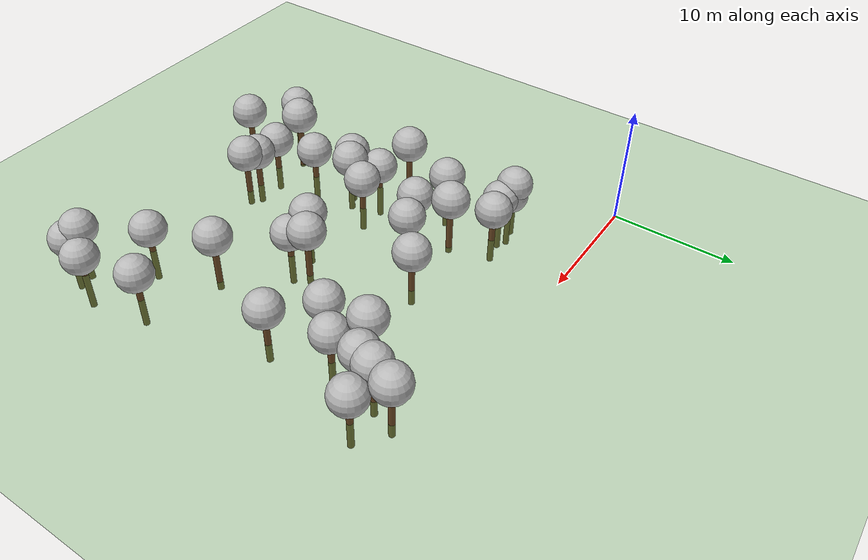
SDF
<sdf version="1.5">
 <world name="default">
  <model name="tree_simple496">
   <static>1</static>
   <link name="link">
    <pose>0 0 0.1 0 -0 0</pose>
    <collision name="collision_trunk">
     <pose>0 0 2 0 -0 0</pose>
     <geometry><cylinder><radius>0.25</radius><length>4</length></cylinder></geometry>
    </collision>
    <collision name="collision_treetop">
     <pose>0 0 5.2 0 -0 0</pose>
     <geometry><sphere><radius>1.5</radius></sphere></geometry>
    </collision>
    <visual name="trunk">
     <pose>0 0 2 0 -0 0</pose>
     <geometry><cylinder><radius>0.25</radius><length>4</length></cylinder></geometry>
     <material>
      <script>
       <uri>model://tree_simple/scripts</uri>
       <uri>model://tree_simple/materials/textures</uri>
       <name>TreeSimple/Trunk</name>
      </script>
     </material>
    </visual>
    <visual name="treetop">
     <pose>0 0 5.2 0 -0 0</pose>
     <geometry><sphere><radius>1.5</radius></sphere></geometry>
     <material>
      <script>
       <uri>model://tree_simple/scripts</uri>
       <uri>model://tree_simple/materials/textures</uri>
       <name>TreeSimple/Treetop</name>
      </script>
     </material>
    </visual>
   </link>
   <pose>13.6194298432 -26.9856291803 -1.9347447163207072 0 -0 0</pose>
  </model>
  <model name="tree_simple478">
   <static>1</static>
   <link name="link">
    <pose>0 0 0.1 0 -0 0</pose>
    <collision name="collision_trunk">
     <pose>0 0 2 0 -0 0</pose>
     <geometry><cylinder><radius>0.25</radius><length>4</length></cylinder></geometry>
    </collision>
    <collision name="collision_treetop">
     <pose>0 0 5.2 0 -0 0</pose>
     <geometry><sphere><radius>1.5</radius></sphere></geometry>
    </collision>
    <visual name="trunk">
     <pose>0 0 2 0 -0 0</pose>
     <geometry><cylinder><radius>0.25</radius><length>4</length></cylinder></geometry>
     <material>
      <script>
       <uri>model://tree_simple/scripts</uri>
       <uri>model://tree_simple/materials/textures</uri>
       <name>TreeSimple/Trunk</name>
      </script>
     </material>
    </visual>
    <visual name="treetop">
     <pose>0 0 5.2 0 -0 0</pose>
     <geometry><sphere><radius>1.5</radius></sphere></geometry>
     <material>
      <script>
       <uri>model://tree_simple/scripts</uri>
       <uri>model://tree_simple/materials/textures</uri>
       <name>TreeSimple/Treetop</name>
      </script>
     </material>
    </visual>
   </link>
   <pose>6.74093075138 -12.3162984353 -2.3090144796189875 0 -0 0</pose>
  </model>
  <model name="tree_simple472">
   <static>1</static>
   <link name="link">
    <pose>0 0 0.1 0 -0 0</pose>
    <collision name="collision_trunk">
     <pose>0 0 2 0 -0 0</pose>
     <geometry><cylinder><radius>0.25</radius><length>4</length></cylinder></geometry>
    </collision>
    <collision name="collision_treetop">
     <pose>0 0 5.2 0 -0 0</pose>
     <geometry><sphere><radius>1.5</radius></sphere></geometry>
    </collision>
    <visual name="trunk">
     <pose>0 0 2 0 -0 0</pose>
     <geometry><cylinder><radius>0.25</radius><length>4</length></cylinder></geometry>
     <material>
      <script>
       <uri>model://tree_simple/scripts</uri>
       <uri>model://tree_simple/materials/textures</uri>
       <name>TreeSimple/Trunk</name>
      </script>
     </material>
    </visual>
    <visual name="treetop">
     <pose>0 0 5.2 0 -0 0</pose>
     <geometry><sphere><radius>1.5</radius></sphere></geometry>
     <material>
      <script>
       <uri>model://tree_simple/scripts</uri>
       <uri>model://tree_simple/materials/textures</uri>
       <name>TreeSimple/Treetop</name>
      </script>
     </material>
    </visual>
   </link>
   <pose>9.92228677952 -23.8303447852 -2.588696135577622 0 -0 0</pose>
  </model>
  <model name="tree_simple469">
   <static>1</static>
   <link name="link">
    <pose>0 0 0.1 0 -0 0</pose>
    <collision name="collision_trunk">
     <pose>0 0 2 0 -0 0</pose>
     <geometry><cylinder><radius>0.25</radius><length>4</length></cylinder></geometry>
    </collision>
    <collision name="collision_treetop">
     <pose>0 0 5.2 0 -0 0</pose>
     <geometry><sphere><radius>1.5</radius></sphere></geometry>
    </collision>
    <visual name="trunk">
     <pose>0 0 2 0 -0 0</pose>
     <geometry><cylinder><radius>0.25</radius><length>4</length></cylinder></geometry>
     <material>
      <script>
       <uri>model://tree_simple/scripts</uri>
       <uri>model://tree_simple/materials/textures</uri>
       <name>TreeSimple/Trunk</name>
      </script>
     </material>
    </visual>
    <visual name="treetop">
     <pose>0 0 5.2 0 -0 0</pose>
     <geometry><sphere><radius>1.5</radius></sphere></geometry>
     <material>
      <script>
       <uri>model://tree_simple/scripts</uri>
       <uri>model://tree_simple/materials/textures</uri>
       <name>TreeSimple/Treetop</name>
      </script>
     </material>
    </visual>
   </link>
   <pose>28.6908934165 -31.7515844244 -2.281617551286586 0 -0 0</pose>
  </model>
  <model name="tree_simple463">
   <static>1</static>
   <link name="link">
    <pose>0 0 0.1 0 -0 0</pose>
    <collision name="collision_trunk">
     <pose>0 0 2 0 -0 0</pose>
     <geometry><cylinder><radius>0.25</radius><length>4</length></cylinder></geometry>
    </collision>
    <collision name="collision_treetop">
     <pose>0 0 5.2 0 -0 0</pose>
     <geometry><sphere><radius>1.5</radius></sphere></geometry>
    </collision>
    <visual name="trunk">
     <pose>0 0 2 0 -0 0</pose>
     <geometry><cylinder><radius>0.25</radius><length>4</length></cylinder></geometry>
     <material>
      <script>
       <uri>model://tree_simple/scripts</uri>
       <uri>model://tree_simple/materials/textures</uri>
       <name>TreeSimple/Trunk</name>
      </script>
     </material>
    </visual>
    <visual name="treetop">
     <pose>0 0 5.2 0 -0 0</pose>
     <geometry><sphere><radius>1.5</radius></sphere></geometry>
     <material>
      <script>
       <uri>model://tree_simple/scripts</uri>
       <uri>model://tree_simple/materials/textures</uri>
       <name>TreeSimple/Treetop</name>
      </script>
     </material>
    </visual>
   </link>
   <pose>4.14452898467 -7.71733475474 -3.9298275554259687 0 -0 0</pose>
  </model>
  <model name="tree_simple451">
   <static>1</static>
   <link name="link">
    <pose>0 0 0.1 0 -0 0</pose>
    <collision name="collision_trunk">
     <pose>0 0 2 0 -0 0</pose>
     <geometry><cylinder><radius>0.25</radius><length>4</length></cylinder></geometry>
    </collision>
    <collision name="collision_treetop">
     <pose>0 0 5.2 0 -0 0</pose>
     <geometry><sphere><radius>1.5</radius></sphere></geometry>
    </collision>
    <visual name="trunk">
     <pose>0 0 2 0 -0 0</pose>
     <geometry><cylinder><radius>0.25</radius><length>4</length></cylinder></geometry>
     <material>
      <script>
       <uri>model://tree_simple/scripts</uri>
       <uri>model://tree_simple/materials/textures</uri>
       <name>TreeSimple/Trunk</name>
      </script>
     </material>
    </visual>
    <visual name="treetop">
     <pose>0 0 5.2 0 -0 0</pose>
     <geometry><sphere><radius>1.5</radius></sphere></geometry>
     <material>
      <script>
       <uri>model://tree_simple/scripts</uri>
       <uri>model://tree_simple/materials/textures</uri>
       <name>TreeSimple/Treetop</name>
      </script>
     </material>
    </visual>
   </link>
   <pose>25.0880879186 -28.1508348671 -3.116724228893323 0 -0 0</pose>
  </model>
  <model name="tree_simple439">
   <static>1</static>
   <link name="link">
    <pose>0 0 0.1 0 -0 0</pose>
    <collision name="collision_trunk">
     <pose>0 0 2 0 -0 0</pose>
     <geometry><cylinder><radius>0.25</radius><length>4</length></cylinder></geometry>
    </collision>
    <collision name="collision_treetop">
     <pose>0 0 5.2 0 -0 0</pose>
     <geometry><sphere><radius>1.5</radius></sphere></geometry>
    </collision>
    <visual name="trunk">
     <pose>0 0 2 0 -0 0</pose>
     <geometry><cylinder><radius>0.25</radius><length>4</length></cylinder></geometry>
     <material>
      <script>
       <uri>model://tree_simple/scripts</uri>
       <uri>model://tree_simple/materials/textures</uri>
       <name>TreeSimple/Trunk</name>
      </script>
     </material>
    </visual>
    <visual name="treetop">
     <pose>0 0 5.2 0 -0 0</pose>
     <geometry><sphere><radius>1.5</radius></sphere></geometry>
     <material>
      <script>
       <uri>model://tree_simple/scripts</uri>
       <uri>model://tree_simple/materials/textures</uri>
       <name>TreeSimple/Treetop</name>
      </script>
     </material>
    </visual>
   </link>
   <pose>8.56501316053 -20.7640585998 -2.2327764649918236 0 -0 0</pose>
  </model>
  <model name="tree_simple432">
   <static>1</static>
   <link name="link">
    <pose>0 0 0.1 0 -0 0</pose>
    <collision name="collision_trunk">
     <pose>0 0 2 0 -0 0</pose>
     <geometry><cylinder><radius>0.25</radius><length>4</length></cylinder></geometry>
    </collision>
    <collision name="collision_treetop">
     <pose>0 0 5.2 0 -0 0</pose>
     <geometry><sphere><radius>1.5</radius></sphere></geometry>
    </collision>
    <visual name="trunk">
     <pose>0 0 2 0 -0 0</pose>
     <geometry><cylinder><radius>0.25</radius><length>4</length></cylinder></geometry>
     <material>
      <script>
       <uri>model://tree_simple/scripts</uri>
       <uri>model://tree_simple/materials/textures</uri>
       <name>TreeSimple/Trunk</name>
      </script>
     </material>
    </visual>
    <visual name="treetop">
     <pose>0 0 5.2 0 -0 0</pose>
     <geometry><sphere><radius>1.5</radius></sphere></geometry>
     <material>
      <script>
       <uri>model://tree_simple/scripts</uri>
       <uri>model://tree_simple/materials/textures</uri>
       <name>TreeSimple/Treetop</name>
      </script>
     </material>
    </visual>
   </link>
   <pose>8.39657738542 -6.88848549894 -2.341916558692954 0 -0 0</pose>
  </model>
  <model name="tree_simple429">
   <static>1</static>
   <link name="link">
    <pose>0 0 0.1 0 -0 0</pose>
    <collision name="collision_trunk">
     <pose>0 0 2 0 -0 0</pose>
     <geometry><cylinder><radius>0.25</radius><length>4</length></cylinder></geometry>
    </collision>
    <collision name="collision_treetop">
     <pose>0 0 5.2 0 -0 0</pose>
     <geometry><sphere><radius>1.5</radius></sphere></geometry>
    </collision>
    <visual name="trunk">
     <pose>0 0 2 0 -0 0</pose>
     <geometry><cylinder><radius>0.25</radius><length>4</length></cylinder></geometry>
     <material>
      <script>
       <uri>model://tree_simple/scripts</uri>
       <uri>model://tree_simple/materials/textures</uri>
       <name>TreeSimple/Trunk</name>
      </script>
     </material>
    </visual>
    <visual name="treetop">
     <pose>0 0 5.2 0 -0 0</pose>
     <geometry><sphere><radius>1.5</radius></sphere></geometry>
     <material>
      <script>
       <uri>model://tree_simple/scripts</uri>
       <uri>model://tree_simple/materials/textures</uri>
       <name>TreeSimple/Treetop</name>
      </script>
     </material>
    </visual>
   </link>
   <pose>29.4727075469 -24.7358283571 -2.736658393789036 0 -0 0</pose>
  </model>
  <model name="tree_simple428">
   <static>1</static>
   <link name="link">
    <pose>0 0 0.1 0 -0 0</pose>
    <collision name="collision_trunk">
     <pose>0 0 2 0 -0 0</pose>
     <geometry><cylinder><radius>0.25</radius><length>4</length></cylinder></geometry>
    </collision>
    <collision name="collision_treetop">
     <pose>0 0 5.2 0 -0 0</pose>
     <geometry><sphere><radius>1.5</radius></sphere></geometry>
    </collision>
    <visual name="trunk">
     <pose>0 0 2 0 -0 0</pose>
     <geometry><cylinder><radius>0.25</radius><length>4</length></cylinder></geometry>
     <material>
      <script>
       <uri>model://tree_simple/scripts</uri>
       <uri>model://tree_simple/materials/textures</uri>
       <name>TreeSimple/Trunk</name>
      </script>
     </material>
    </visual>
    <visual name="treetop">
     <pose>0 0 5.2 0 -0 0</pose>
     <geometry><sphere><radius>1.5</radius></sphere></geometry>
     <material>
      <script>
       <uri>model://tree_simple/scripts</uri>
       <uri>model://tree_simple/materials/textures</uri>
       <name>TreeSimple/Treetop</name>
      </script>
     </material>
    </visual>
   </link>
   <pose>9.87663766252 -19.9509422297 -1.9351295127514692 0 -0 0</pose>
  </model>
  <model name="tree_simple394">
   <static>1</static>
   <link name="link">
    <pose>0 0 0.1 0 -0 0</pose>
    <collision name="collision_trunk">
     <pose>0 0 2 0 -0 0</pose>
     <geometry><cylinder><radius>0.25</radius><length>4</length></cylinder></geometry>
    </collision>
    <collision name="collision_treetop">
     <pose>0 0 5.2 0 -0 0</pose>
     <geometry><sphere><radius>1.5</radius></sphere></geometry>
    </collision>
    <visual name="trunk">
     <pose>0 0 2 0 -0 0</pose>
     <geometry><cylinder><radius>0.25</radius><length>4</length></cylinder></geometry>
     <material>
      <script>
       <uri>model://tree_simple/scripts</uri>
       <uri>model://tree_simple/materials/textures</uri>
       <name>TreeSimple/Trunk</name>
      </script>
     </material>
    </visual>
    <visual name="treetop">
     <pose>0 0 5.2 0 -0 0</pose>
     <geometry><sphere><radius>1.5</radius></sphere></geometry>
     <material>
      <script>
       <uri>model://tree_simple/scripts</uri>
       <uri>model://tree_simple/materials/textures</uri>
       <name>TreeSimple/Treetop</name>
      </script>
     </material>
    </visual>
   </link>
   <pose>26.6658652991 -6.19294115589 -1.7729371678817394 0 -0 0</pose>
  </model>
  <model name="tree_simple389">
   <static>1</static>
   <link name="link">
    <pose>0 0 0.1 0 -0 0</pose>
    <collision name="collision_trunk">
     <pose>0 0 2 0 -0 0</pose>
     <geometry><cylinder><radius>0.25</radius><length>4</length></cylinder></geometry>
    </collision>
    <collision name="collision_treetop">
     <pose>0 0 5.2 0 -0 0</pose>
     <geometry><sphere><radius>1.5</radius></sphere></geometry>
    </collision>
    <visual name="trunk">
     <pose>0 0 2 0 -0 0</pose>
     <geometry><cylinder><radius>0.25</radius><length>4</length></cylinder></geometry>
     <material>
      <script>
       <uri>model://tree_simple/scripts</uri>
       <uri>model://tree_simple/materials/textures</uri>
       <name>TreeSimple/Trunk</name>
      </script>
     </material>
    </visual>
    <visual name="treetop">
     <pose>0 0 5.2 0 -0 0</pose>
     <geometry><sphere><radius>1.5</radius></sphere></geometry>
     <material>
      <script>
       <uri>model://tree_simple/scripts</uri>
       <uri>model://tree_simple/materials/textures</uri>
       <name>TreeSimple/Treetop</name>
      </script>
     </material>
    </visual>
   </link>
   <pose>12.5934036343 -12.2598342596 -2.7093707759509686 0 -0 0</pose>
  </model>
  <model name="tree_simple377">
   <static>1</static>
   <link name="link">
    <pose>0 0 0.1 0 -0 0</pose>
    <collision name="collision_trunk">
     <pose>0 0 2 0 -0 0</pose>
     <geometry><cylinder><radius>0.25</radius><length>4</length></cylinder></geometry>
    </collision>
    <collision name="collision_treetop">
     <pose>0 0 5.2 0 -0 0</pose>
     <geometry><sphere><radius>1.5</radius></sphere></geometry>
    </collision>
    <visual name="trunk">
     <pose>0 0 2 0 -0 0</pose>
     <geometry><cylinder><radius>0.25</radius><length>4</length></cylinder></geometry>
     <material>
      <script>
       <uri>model://tree_simple/scripts</uri>
       <uri>model://tree_simple/materials/textures</uri>
       <name>TreeSimple/Trunk</name>
      </script>
     </material>
    </visual>
    <visual name="treetop">
     <pose>0 0 5.2 0 -0 0</pose>
     <geometry><sphere><radius>1.5</radius></sphere></geometry>
     <material>
      <script>
       <uri>model://tree_simple/scripts</uri>
       <uri>model://tree_simple/materials/textures</uri>
       <name>TreeSimple/Treetop</name>
      </script>
     </material>
    </visual>
   </link>
   <pose>10.8205708978 -27.3699142702 -2.4319769358660213 0 -0 0</pose>
  </model>
  <model name="tree_simple327">
   <static>1</static>
   <link name="link">
    <pose>0 0 0.1 0 -0 0</pose>
    <collision name="collision_trunk">
     <pose>0 0 2 0 -0 0</pose>
     <geometry><cylinder><radius>0.25</radius><length>4</length></cylinder></geometry>
    </collision>
    <collision name="collision_treetop">
     <pose>0 0 5.2 0 -0 0</pose>
     <geometry><sphere><radius>1.5</radius></sphere></geometry>
    </collision>
    <visual name="trunk">
     <pose>0 0 2 0 -0 0</pose>
     <geometry><cylinder><radius>0.25</radius><length>4</length></cylinder></geometry>
     <material>
      <script>
       <uri>model://tree_simple/scripts</uri>
       <uri>model://tree_simple/materials/textures</uri>
       <name>TreeSimple/Trunk</name>
      </script>
     </material>
    </visual>
    <visual name="treetop">
     <pose>0 0 5.2 0 -0 0</pose>
     <geometry><sphere><radius>1.5</radius></sphere></geometry>
     <material>
      <script>
       <uri>model://tree_simple/scripts</uri>
       <uri>model://tree_simple/materials/textures</uri>
       <name>TreeSimple/Treetop</name>
      </script>
     </material>
    </visual>
   </link>
   <pose>5.78438571624 -16.7663148306 -1.511921280779816 0 -0 0</pose>
  </model>
  <model name="tree_simple309">
   <static>1</static>
   <link name="link">
    <pose>0 0 0.1 0 -0 0</pose>
    <collision name="collision_trunk">
     <pose>0 0 2 0 -0 0</pose>
     <geometry><cylinder><radius>0.25</radius><length>4</length></cylinder></geometry>
    </collision>
    <collision name="collision_treetop">
     <pose>0 0 5.2 0 -0 0</pose>
     <geometry><sphere><radius>1.5</radius></sphere></geometry>
    </collision>
    <visual name="trunk">
     <pose>0 0 2 0 -0 0</pose>
     <geometry><cylinder><radius>0.25</radius><length>4</length></cylinder></geometry>
     <material>
      <script>
       <uri>model://tree_simple/scripts</uri>
       <uri>model://tree_simple/materials/textures</uri>
       <name>TreeSimple/Trunk</name>
      </script>
     </material>
    </visual>
    <visual name="treetop">
     <pose>0 0 5.2 0 -0 0</pose>
     <geometry><sphere><radius>1.5</radius></sphere></geometry>
     <material>
      <script>
       <uri>model://tree_simple/scripts</uri>
       <uri>model://tree_simple/materials/textures</uri>
       <name>TreeSimple/Treetop</name>
      </script>
     </material>
    </visual>
   </link>
   <pose>19.1748935323 -18.8000539767 -3.039830570785025 0 -0 0</pose>
  </model>
  <model name="tree_simple301">
   <static>1</static>
   <link name="link">
    <pose>0 0 0.1 0 -0 0</pose>
    <collision name="collision_trunk">
     <pose>0 0 2 0 -0 0</pose>
     <geometry><cylinder><radius>0.25</radius><length>4</length></cylinder></geometry>
    </collision>
    <collision name="collision_treetop">
     <pose>0 0 5.2 0 -0 0</pose>
     <geometry><sphere><radius>1.5</radius></sphere></geometry>
    </collision>
    <visual name="trunk">
     <pose>0 0 2 0 -0 0</pose>
     <geometry><cylinder><radius>0.25</radius><length>4</length></cylinder></geometry>
     <material>
      <script>
       <uri>model://tree_simple/scripts</uri>
       <uri>model://tree_simple/materials/textures</uri>
       <name>TreeSimple/Trunk</name>
      </script>
     </material>
    </visual>
    <visual name="treetop">
     <pose>0 0 5.2 0 -0 0</pose>
     <geometry><sphere><radius>1.5</radius></sphere></geometry>
     <material>
      <script>
       <uri>model://tree_simple/scripts</uri>
       <uri>model://tree_simple/materials/textures</uri>
       <name>TreeSimple/Treetop</name>
      </script>
     </material>
    </visual>
   </link>
   <pose>27.965012063 -2.69695305694 -1.3853442953855346 0 -0 0</pose>
  </model>
  <model name="tree_simple292">
   <static>1</static>
   <link name="link">
    <pose>0 0 0.1 0 -0 0</pose>
    <collision name="collision_trunk">
     <pose>0 0 2 0 -0 0</pose>
     <geometry><cylinder><radius>0.25</radius><length>4</length></cylinder></geometry>
    </collision>
    <collision name="collision_treetop">
     <pose>0 0 5.2 0 -0 0</pose>
     <geometry><sphere><radius>1.5</radius></sphere></geometry>
    </collision>
    <visual name="trunk">
     <pose>0 0 2 0 -0 0</pose>
     <geometry><cylinder><radius>0.25</radius><length>4</length></cylinder></geometry>
     <material>
      <script>
       <uri>model://tree_simple/scripts</uri>
       <uri>model://tree_simple/materials/textures</uri>
       <name>TreeSimple/Trunk</name>
      </script>
     </material>
    </visual>
    <visual name="treetop">
     <pose>0 0 5.2 0 -0 0</pose>
     <geometry><sphere><radius>1.5</radius></sphere></geometry>
     <material>
      <script>
       <uri>model://tree_simple/scripts</uri>
       <uri>model://tree_simple/materials/textures</uri>
       <name>TreeSimple/Treetop</name>
      </script>
     </material>
    </visual>
   </link>
   <pose>16.8917664362 -8.8290409333 -1.6028056781486448 0 -0 0</pose>
  </model>
  <model name="tree_simple290">
   <static>1</static>
   <link name="link">
    <pose>0 0 0.1 0 -0 0</pose>
    <collision name="collision_trunk">
     <pose>0 0 2 0 -0 0</pose>
     <geometry><cylinder><radius>0.25</radius><length>4</length></cylinder></geometry>
    </collision>
    <collision name="collision_treetop">
     <pose>0 0 5.2 0 -0 0</pose>
     <geometry><sphere><radius>1.5</radius></sphere></geometry>
    </collision>
    <visual name="trunk">
     <pose>0 0 2 0 -0 0</pose>
     <geometry><cylinder><radius>0.25</radius><length>4</length></cylinder></geometry>
     <material>
      <script>
       <uri>model://tree_simple/scripts</uri>
       <uri>model://tree_simple/materials/textures</uri>
       <name>TreeSimple/Trunk</name>
      </script>
     </material>
    </visual>
    <visual name="treetop">
     <pose>0 0 5.2 0 -0 0</pose>
     <geometry><sphere><radius>1.5</radius></sphere></geometry>
     <material>
      <script>
       <uri>model://tree_simple/scripts</uri>
       <uri>model://tree_simple/materials/textures</uri>
       <name>TreeSimple/Treetop</name>
      </script>
     </material>
    </visual>
   </link>
   <pose>27.3398552582 -13.9618363734 -1.8714711637909252 0 -0 0</pose>
  </model>
  <model name="tree_simple288">
   <static>1</static>
   <link name="link">
    <pose>0 0 0.1 0 -0 0</pose>
    <collision name="collision_trunk">
     <pose>0 0 2 0 -0 0</pose>
     <geometry><cylinder><radius>0.25</radius><length>4</length></cylinder></geometry>
    </collision>
    <collision name="collision_treetop">
     <pose>0 0 5.2 0 -0 0</pose>
     <geometry><sphere><radius>1.5</radius></sphere></geometry>
    </collision>
    <visual name="trunk">
     <pose>0 0 2 0 -0 0</pose>
     <geometry><cylinder><radius>0.25</radius><length>4</length></cylinder></geometry>
     <material>
      <script>
       <uri>model://tree_simple/scripts</uri>
       <uri>model://tree_simple/materials/textures</uri>
       <name>TreeSimple/Trunk</name>
      </script>
     </material>
    </visual>
    <visual name="treetop">
     <pose>0 0 5.2 0 -0 0</pose>
     <geometry><sphere><radius>1.5</radius></sphere></geometry>
     <material>
      <script>
       <uri>model://tree_simple/scripts</uri>
       <uri>model://tree_simple/materials/textures</uri>
       <name>TreeSimple/Treetop</name>
      </script>
     </material>
    </visual>
   </link>
   <pose>27.0972467775 -4.81040951666 -1.6790307182424624 0 -0 0</pose>
  </model>
  <model name="tree_simple267">
   <static>1</static>
   <link name="link">
    <pose>0 0 0.1 0 -0 0</pose>
    <collision name="collision_trunk">
     <pose>0 0 2 0 -0 0</pose>
     <geometry><cylinder><radius>0.25</radius><length>4</length></cylinder></geometry>
    </collision>
    <collision name="collision_treetop">
     <pose>0 0 5.2 0 -0 0</pose>
     <geometry><sphere><radius>1.5</radius></sphere></geometry>
    </collision>
    <visual name="trunk">
     <pose>0 0 2 0 -0 0</pose>
     <geometry><cylinder><radius>0.25</radius><length>4</length></cylinder></geometry>
     <material>
      <script>
       <uri>model://tree_simple/scripts</uri>
       <uri>model://tree_simple/materials/textures</uri>
       <name>TreeSimple/Trunk</name>
      </script>
     </material>
    </visual>
    <visual name="treetop">
     <pose>0 0 5.2 0 -0 0</pose>
     <geometry><sphere><radius>1.5</radius></sphere></geometry>
     <material>
      <script>
       <uri>model://tree_simple/scripts</uri>
       <uri>model://tree_simple/materials/textures</uri>
       <name>TreeSimple/Treetop</name>
      </script>
     </material>
    </visual>
   </link>
   <pose>26.0311147771 -9.256788114 -2.4995461271505435 0 -0 0</pose>
  </model>
  <model name="tree_simple255">
   <static>1</static>
   <link name="link">
    <pose>0 0 0.1 0 -0 0</pose>
    <collision name="collision_trunk">
     <pose>0 0 2 0 -0 0</pose>
     <geometry><cylinder><radius>0.25</radius><length>4</length></cylinder></geometry>
    </collision>
    <collision name="collision_treetop">
     <pose>0 0 5.2 0 -0 0</pose>
     <geometry><sphere><radius>1.5</radius></sphere></geometry>
    </collision>
    <visual name="trunk">
     <pose>0 0 2 0 -0 0</pose>
     <geometry><cylinder><radius>0.25</radius><length>4</length></cylinder></geometry>
     <material>
      <script>
       <uri>model://tree_simple/scripts</uri>
       <uri>model://tree_simple/materials/textures</uri>
       <name>TreeSimple/Trunk</name>
      </script>
     </material>
    </visual>
    <visual name="treetop">
     <pose>0 0 5.2 0 -0 0</pose>
     <geometry><sphere><radius>1.5</radius></sphere></geometry>
     <material>
      <script>
       <uri>model://tree_simple/scripts</uri>
       <uri>model://tree_simple/materials/textures</uri>
       <name>TreeSimple/Treetop</name>
      </script>
     </material>
    </visual>
   </link>
   <pose>30.0970419452 -30.3026780561 -3.492157413182865 0 -0 0</pose>
  </model>
  <model name="tree_simple249">
   <static>1</static>
   <link name="link">
    <pose>0 0 0.1 0 -0 0</pose>
    <collision name="collision_trunk">
     <pose>0 0 2 0 -0 0</pose>
     <geometry><cylinder><radius>0.25</radius><length>4</length></cylinder></geometry>
    </collision>
    <collision name="collision_treetop">
     <pose>0 0 5.2 0 -0 0</pose>
     <geometry><sphere><radius>1.5</radius></sphere></geometry>
    </collision>
    <visual name="trunk">
     <pose>0 0 2 0 -0 0</pose>
     <geometry><cylinder><radius>0.25</radius><length>4</length></cylinder></geometry>
     <material>
      <script>
       <uri>model://tree_simple/scripts</uri>
       <uri>model://tree_simple/materials/textures</uri>
       <name>TreeSimple/Trunk</name>
      </script>
     </material>
    </visual>
    <visual name="treetop">
     <pose>0 0 5.2 0 -0 0</pose>
     <geometry><sphere><radius>1.5</radius></sphere></geometry>
     <material>
      <script>
       <uri>model://tree_simple/scripts</uri>
       <uri>model://tree_simple/materials/textures</uri>
       <name>TreeSimple/Treetop</name>
      </script>
     </material>
    </visual>
   </link>
   <pose>9.52111231685 -31.538100668 -1.7090006520964358 0 -0 0</pose>
  </model>
  <model name="tree_simple222">
   <static>1</static>
   <link name="link">
    <pose>0 0 0.1 0 -0 0</pose>
    <collision name="collision_trunk">
     <pose>0 0 2 0 -0 0</pose>
     <geometry><cylinder><radius>0.25</radius><length>4</length></cylinder></geometry>
    </collision>
    <collision name="collision_treetop">
     <pose>0 0 5.2 0 -0 0</pose>
     <geometry><sphere><radius>1.5</radius></sphere></geometry>
    </collision>
    <visual name="trunk">
     <pose>0 0 2 0 -0 0</pose>
     <geometry><cylinder><radius>0.25</radius><length>4</length></cylinder></geometry>
     <material>
      <script>
       <uri>model://tree_simple/scripts</uri>
       <uri>model://tree_simple/materials/textures</uri>
       <name>TreeSimple/Trunk</name>
      </script>
     </material>
    </visual>
    <visual name="treetop">
     <pose>0 0 5.2 0 -0 0</pose>
     <geometry><sphere><radius>1.5</radius></sphere></geometry>
     <material>
      <script>
       <uri>model://tree_simple/scripts</uri>
       <uri>model://tree_simple/materials/textures</uri>
       <name>TreeSimple/Treetop</name>
      </script>
     </material>
    </visual>
   </link>
   <pose>3.92504774623 -7.51224141252 -2.8369471811865004 0 -0 0</pose>
  </model>
  <model name="tree_simple211">
   <static>1</static>
   <link name="link">
    <pose>0 0 0.1 0 -0 0</pose>
    <collision name="collision_trunk">
     <pose>0 0 2 0 -0 0</pose>
     <geometry><cylinder><radius>0.25</radius><length>4</length></cylinder></geometry>
    </collision>
    <collision name="collision_treetop">
     <pose>0 0 5.2 0 -0 0</pose>
     <geometry><sphere><radius>1.5</radius></sphere></geometry>
    </collision>
    <visual name="trunk">
     <pose>0 0 2 0 -0 0</pose>
     <geometry><cylinder><radius>0.25</radius><length>4</length></cylinder></geometry>
     <material>
      <script>
       <uri>model://tree_simple/scripts</uri>
       <uri>model://tree_simple/materials/textures</uri>
       <name>TreeSimple/Trunk</name>
      </script>
     </material>
    </visual>
    <visual name="treetop">
     <pose>0 0 5.2 0 -0 0</pose>
     <geometry><sphere><radius>1.5</radius></sphere></geometry>
     <material>
      <script>
       <uri>model://tree_simple/scripts</uri>
       <uri>model://tree_simple/materials/textures</uri>
       <name>TreeSimple/Treetop</name>
      </script>
     </material>
    </visual>
   </link>
   <pose>24.1088627432 -11.2741546154 -2.081752788212628 0 -0 0</pose>
  </model>
  <model name="tree_simple191">
   <static>1</static>
   <link name="link">
    <pose>0 0 0.1 0 -0 0</pose>
    <collision name="collision_trunk">
     <pose>0 0 2 0 -0 0</pose>
     <geometry><cylinder><radius>0.25</radius><length>4</length></cylinder></geometry>
    </collision>
    <collision name="collision_treetop">
     <pose>0 0 5.2 0 -0 0</pose>
     <geometry><sphere><radius>1.5</radius></sphere></geometry>
    </collision>
    <visual name="trunk">
     <pose>0 0 2 0 -0 0</pose>
     <geometry><cylinder><radius>0.25</radius><length>4</length></cylinder></geometry>
     <material>
      <script>
       <uri>model://tree_simple/scripts</uri>
       <uri>model://tree_simple/materials/textures</uri>
       <name>TreeSimple/Trunk</name>
      </script>
     </material>
    </visual>
    <visual name="treetop">
     <pose>0 0 5.2 0 -0 0</pose>
     <geometry><sphere><radius>1.5</radius></sphere></geometry>
     <material>
      <script>
       <uri>model://tree_simple/scripts</uri>
       <uri>model://tree_simple/materials/textures</uri>
       <name>TreeSimple/Treetop</name>
      </script>
     </material>
    </visual>
   </link>
   <pose>7.88783183775 -18.3803184039 -3.1903346851856416 0 -0 0</pose>
  </model>
  <model name="tree_simple178">
   <static>1</static>
   <link name="link">
    <pose>0 0 0.1 0 -0 0</pose>
    <collision name="collision_trunk">
     <pose>0 0 2 0 -0 0</pose>
     <geometry><cylinder><radius>0.25</radius><length>4</length></cylinder></geometry>
    </collision>
    <collision name="collision_treetop">
     <pose>0 0 5.2 0 -0 0</pose>
     <geometry><sphere><radius>1.5</radius></sphere></geometry>
    </collision>
    <visual name="trunk">
     <pose>0 0 2 0 -0 0</pose>
     <geometry><cylinder><radius>0.25</radius><length>4</length></cylinder></geometry>
     <material>
      <script>
       <uri>model://tree_simple/scripts</uri>
       <uri>model://tree_simple/materials/textures</uri>
       <name>TreeSimple/Trunk</name>
      </script>
     </material>
    </visual>
    <visual name="treetop">
     <pose>0 0 5.2 0 -0 0</pose>
     <geometry><sphere><radius>1.5</radius></sphere></geometry>
     <material>
      <script>
       <uri>model://tree_simple/scripts</uri>
       <uri>model://tree_simple/materials/textures</uri>
       <name>TreeSimple/Treetop</name>
      </script>
     </material>
    </visual>
   </link>
   <pose>24.3791750449 -7.18218424398 -1.107403928734528 0 -0 0</pose>
  </model>
  <model name="tree_simple168">
   <static>1</static>
   <link name="link">
    <pose>0 0 0.1 0 -0 0</pose>
    <collision name="collision_trunk">
     <pose>0 0 2 0 -0 0</pose>
     <geometry><cylinder><radius>0.25</radius><length>4</length></cylinder></geometry>
    </collision>
    <collision name="collision_treetop">
     <pose>0 0 5.2 0 -0 0</pose>
     <geometry><sphere><radius>1.5</radius></sphere></geometry>
    </collision>
    <visual name="trunk">
     <pose>0 0 2 0 -0 0</pose>
     <geometry><cylinder><radius>0.25</radius><length>4</length></cylinder></geometry>
     <material>
      <script>
       <uri>model://tree_simple/scripts</uri>
       <uri>model://tree_simple/materials/textures</uri>
       <name>TreeSimple/Trunk</name>
      </script>
     </material>
    </visual>
    <visual name="treetop">
     <pose>0 0 5.2 0 -0 0</pose>
     <geometry><sphere><radius>1.5</radius></sphere></geometry>
     <material>
      <script>
       <uri>model://tree_simple/scripts</uri>
       <uri>model://tree_simple/materials/textures</uri>
       <name>TreeSimple/Treetop</name>
      </script>
     </material>
    </visual>
   </link>
   <pose>14.8234440125 -27.1346741382 -1.4881292868897207 0 -0 0</pose>
  </model>
  <model name="tree_simple157">
   <static>1</static>
   <link name="link">
    <pose>0 0 0.1 0 -0 0</pose>
    <collision name="collision_trunk">
     <pose>0 0 2 0 -0 0</pose>
     <geometry><cylinder><radius>0.25</radius><length>4</length></cylinder></geometry>
    </collision>
    <collision name="collision_treetop">
     <pose>0 0 5.2 0 -0 0</pose>
     <geometry><sphere><radius>1.5</radius></sphere></geometry>
    </collision>
    <visual name="trunk">
     <pose>0 0 2 0 -0 0</pose>
     <geometry><cylinder><radius>0.25</radius><length>4</length></cylinder></geometry>
     <material>
      <script>
       <uri>model://tree_simple/scripts</uri>
       <uri>model://tree_simple/materials/textures</uri>
       <name>TreeSimple/Trunk</name>
      </script>
     </material>
    </visual>
    <visual name="treetop">
     <pose>0 0 5.2 0 -0 0</pose>
     <geometry><sphere><radius>1.5</radius></sphere></geometry>
     <material>
      <script>
       <uri>model://tree_simple/scripts</uri>
       <uri>model://tree_simple/materials/textures</uri>
       <name>TreeSimple/Treetop</name>
      </script>
     </material>
    </visual>
   </link>
   <pose>17.4643259264 -18.2232751505 -1.860762003396119 0 -0 0</pose>
  </model>
  <model name="tree_simple156">
   <static>1</static>
   <link name="link">
    <pose>0 0 0.1 0 -0 0</pose>
    <collision name="collision_trunk">
     <pose>0 0 2 0 -0 0</pose>
     <geometry><cylinder><radius>0.25</radius><length>4</length></cylinder></geometry>
    </collision>
    <collision name="collision_treetop">
     <pose>0 0 5.2 0 -0 0</pose>
     <geometry><sphere><radius>1.5</radius></sphere></geometry>
    </collision>
    <visual name="trunk">
     <pose>0 0 2 0 -0 0</pose>
     <geometry><cylinder><radius>0.25</radius><length>4</length></cylinder></geometry>
     <material>
      <script>
       <uri>model://tree_simple/scripts</uri>
       <uri>model://tree_simple/materials/textures</uri>
       <name>TreeSimple/Trunk</name>
      </script>
     </material>
    </visual>
    <visual name="treetop">
     <pose>0 0 5.2 0 -0 0</pose>
     <geometry><sphere><radius>1.5</radius></sphere></geometry>
     <material>
      <script>
       <uri>model://tree_simple/scripts</uri>
       <uri>model://tree_simple/materials/textures</uri>
       <name>TreeSimple/Treetop</name>
      </script>
     </material>
    </visual>
   </link>
   <pose>20.0356149828 -16.1600287231 -1.0104371091227278 0 -0 0</pose>
  </model>
  <model name="tree_simple124">
   <static>1</static>
   <link name="link">
    <pose>0 0 0.1 0 -0 0</pose>
    <collision name="collision_trunk">
     <pose>0 0 2 0 -0 0</pose>
     <geometry><cylinder><radius>0.25</radius><length>4</length></cylinder></geometry>
    </collision>
    <collision name="collision_treetop">
     <pose>0 0 5.2 0 -0 0</pose>
     <geometry><sphere><radius>1.5</radius></sphere></geometry>
    </collision>
    <visual name="trunk">
     <pose>0 0 2 0 -0 0</pose>
     <geometry><cylinder><radius>0.25</radius><length>4</length></cylinder></geometry>
     <material>
      <script>
       <uri>model://tree_simple/scripts</uri>
       <uri>model://tree_simple/materials/textures</uri>
       <name>TreeSimple/Trunk</name>
      </script>
     </material>
    </visual>
    <visual name="treetop">
     <pose>0 0 5.2 0 -0 0</pose>
     <geometry><sphere><radius>1.5</radius></sphere></geometry>
     <material>
      <script>
       <uri>model://tree_simple/scripts</uri>
       <uri>model://tree_simple/materials/textures</uri>
       <name>TreeSimple/Treetop</name>
      </script>
     </material>
    </visual>
   </link>
   <pose>5.29940018808 -7.97080739541 -3.619126347254465 0 -0 0</pose>
  </model>
  <model name="tree_simple120">
   <static>1</static>
   <link name="link">
    <pose>0 0 0.1 0 -0 0</pose>
    <collision name="collision_trunk">
     <pose>0 0 2 0 -0 0</pose>
     <geometry><cylinder><radius>0.25</radius><length>4</length></cylinder></geometry>
    </collision>
    <collision name="collision_treetop">
     <pose>0 0 5.2 0 -0 0</pose>
     <geometry><sphere><radius>1.5</radius></sphere></geometry>
    </collision>
    <visual name="trunk">
     <pose>0 0 2 0 -0 0</pose>
     <geometry><cylinder><radius>0.25</radius><length>4</length></cylinder></geometry>
     <material>
      <script>
       <uri>model://tree_simple/scripts</uri>
       <uri>model://tree_simple/materials/textures</uri>
       <name>TreeSimple/Trunk</name>
      </script>
     </material>
    </visual>
    <visual name="treetop">
     <pose>0 0 5.2 0 -0 0</pose>
     <geometry><sphere><radius>1.5</radius></sphere></geometry>
     <material>
      <script>
       <uri>model://tree_simple/scripts</uri>
       <uri>model://tree_simple/materials/textures</uri>
       <name>TreeSimple/Treetop</name>
      </script>
     </material>
    </visual>
   </link>
   <pose>29.4958477129 -4.98151152309 -2.619484645614396 0 -0 0</pose>
  </model>
  <model name="tree_simple80">
   <static>1</static>
   <link name="link">
    <pose>0 0 0.1 0 -0 0</pose>
    <collision name="collision_trunk">
     <pose>0 0 2 0 -0 0</pose>
     <geometry><cylinder><radius>0.25</radius><length>4</length></cylinder></geometry>
    </collision>
    <collision name="collision_treetop">
     <pose>0 0 5.2 0 -0 0</pose>
     <geometry><sphere><radius>1.5</radius></sphere></geometry>
    </collision>
    <visual name="trunk">
     <pose>0 0 2 0 -0 0</pose>
     <geometry><cylinder><radius>0.25</radius><length>4</length></cylinder></geometry>
     <material>
      <script>
       <uri>model://tree_simple/scripts</uri>
       <uri>model://tree_simple/materials/textures</uri>
       <name>TreeSimple/Trunk</name>
      </script>
     </material>
    </visual>
    <visual name="treetop">
     <pose>0 0 5.2 0 -0 0</pose>
     <geometry><sphere><radius>1.5</radius></sphere></geometry>
     <material>
      <script>
       <uri>model://tree_simple/scripts</uri>
       <uri>model://tree_simple/materials/textures</uri>
       <name>TreeSimple/Treetop</name>
      </script>
     </material>
    </visual>
   </link>
   <pose>11.0693190469 -17.8172800913 -2.4058275082837186 0 -0 0</pose>
  </model>
  <model name="tree_simple61">
   <static>1</static>
   <link name="link">
    <pose>0 0 0.1 0 -0 0</pose>
    <collision name="collision_trunk">
     <pose>0 0 2 0 -0 0</pose>
     <geometry><cylinder><radius>0.25</radius><length>4</length></cylinder></geometry>
    </collision>
    <collision name="collision_treetop">
     <pose>0 0 5.2 0 -0 0</pose>
     <geometry><sphere><radius>1.5</radius></sphere></geometry>
    </collision>
    <visual name="trunk">
     <pose>0 0 2 0 -0 0</pose>
     <geometry><cylinder><radius>0.25</radius><length>4</length></cylinder></geometry>
     <material>
      <script>
       <uri>model://tree_simple/scripts</uri>
       <uri>model://tree_simple/materials/textures</uri>
       <name>TreeSimple/Trunk</name>
      </script>
     </material>
    </visual>
    <visual name="treetop">
     <pose>0 0 5.2 0 -0 0</pose>
     <geometry><sphere><radius>1.5</radius></sphere></geometry>
     <material>
      <script>
       <uri>model://tree_simple/scripts</uri>
       <uri>model://tree_simple/materials/textures</uri>
       <name>TreeSimple/Treetop</name>
      </script>
     </material>
    </visual>
   </link>
   <pose>11.1083893096 -9.22601092506 -0.6424494945080732 0 -0 0</pose>
  </model>
  <model name="tree_simple40">
   <static>1</static>
   <link name="link">
    <pose>0 0 0.1 0 -0 0</pose>
    <collision name="collision_trunk">
     <pose>0 0 2 0 -0 0</pose>
     <geometry><cylinder><radius>0.25</radius><length>4</length></cylinder></geometry>
    </collision>
    <collision name="collision_treetop">
     <pose>0 0 5.2 0 -0 0</pose>
     <geometry><sphere><radius>1.5</radius></sphere></geometry>
    </collision>
    <visual name="trunk">
     <pose>0 0 2 0 -0 0</pose>
     <geometry><cylinder><radius>0.25</radius><length>4</length></cylinder></geometry>
     <material>
      <script>
       <uri>model://tree_simple/scripts</uri>
       <uri>model://tree_simple/materials/textures</uri>
       <name>TreeSimple/Trunk</name>
      </script>
     </material>
    </visual>
    <visual name="treetop">
     <pose>0 0 5.2 0 -0 0</pose>
     <geometry><sphere><radius>1.5</radius></sphere></geometry>
     <material>
      <script>
       <uri>model://tree_simple/scripts</uri>
       <uri>model://tree_simple/materials/textures</uri>
       <name>TreeSimple/Treetop</name>
      </script>
     </material>
    </visual>
   </link>
   <pose>10.3610745353 -13.0055256356 -2.3384646547665078 0 -0 0</pose>
  </model>
  <model name="tree_simple39">
   <static>1</static>
   <link name="link">
    <pose>0 0 0.1 0 -0 0</pose>
    <collision name="collision_trunk">
     <pose>0 0 2 0 -0 0</pose>
     <geometry><cylinder><radius>0.25</radius><length>4</length></cylinder></geometry>
    </collision>
    <collision name="collision_treetop">
     <pose>0 0 5.2 0 -0 0</pose>
     <geometry><sphere><radius>1.5</radius></sphere></geometry>
    </collision>
    <visual name="trunk">
     <pose>0 0 2 0 -0 0</pose>
     <geometry><cylinder><radius>0.25</radius><length>4</length></cylinder></geometry>
     <material>
      <script>
       <uri>model://tree_simple/scripts</uri>
       <uri>model://tree_simple/materials/textures</uri>
       <name>TreeSimple/Trunk</name>
      </script>
     </material>
    </visual>
    <visual name="treetop">
     <pose>0 0 5.2 0 -0 0</pose>
     <geometry><sphere><radius>1.5</radius></sphere></geometry>
     <material>
      <script>
       <uri>model://tree_simple/scripts</uri>
       <uri>model://tree_simple/materials/textures</uri>
       <name>TreeSimple/Treetop</name>
      </script>
     </material>
    </visual>
   </link>
   <pose>3.31871539321 -31.4823750144 -4.0 0 -0 0</pose>
  </model>
  <model name="tree_simple38">
   <static>1</static>
   <link name="link">
    <pose>0 0 0.1 0 -0 0</pose>
    <collision name="collision_trunk">
     <pose>0 0 2 0 -0 0</pose>
     <geometry><cylinder><radius>0.25</radius><length>4</length></cylinder></geometry>
    </collision>
    <collision name="collision_treetop">
     <pose>0 0 5.2 0 -0 0</pose>
     <geometry><sphere><radius>1.5</radius></sphere></geometry>
    </collision>
    <visual name="trunk">
     <pose>0 0 2 0 -0 0</pose>
     <geometry><cylinder><radius>0.25</radius><length>4</length></cylinder></geometry>
     <material>
      <script>
       <uri>model://tree_simple/scripts</uri>
       <uri>model://tree_simple/materials/textures</uri>
       <name>TreeSimple/Trunk</name>
      </script>
     </material>
    </visual>
    <visual name="treetop">
     <pose>0 0 5.2 0 -0 0</pose>
     <geometry><sphere><radius>1.5</radius></sphere></geometry>
     <material>
      <script>
       <uri>model://tree_simple/scripts</uri>
       <uri>model://tree_simple/materials/textures</uri>
       <name>TreeSimple/Treetop</name>
      </script>
     </material>
    </visual>
   </link>
   <pose>9.1535103592 -25.9369722849 -0.2972041307478672 0 -0 0</pose>
  </model>
  <model name="tree_simple31">
   <static>1</static>
   <link name="link">
    <pose>0 0 0.1 0 -0 0</pose>
    <collision name="collision_trunk">
     <pose>0 0 2 0 -0 0</pose>
     <geometry><cylinder><radius>0.25</radius><length>4</length></cylinder></geometry>
    </collision>
    <collision name="collision_treetop">
     <pose>0 0 5.2 0 -0 0</pose>
     <geometry><sphere><radius>1.5</radius></sphere></geometry>
    </collision>
    <visual name="trunk">
     <pose>0 0 2 0 -0 0</pose>
     <geometry><cylinder><radius>0.25</radius><length>4</length></cylinder></geometry>
     <material>
      <script>
       <uri>model://tree_simple/scripts</uri>
       <uri>model://tree_simple/materials/textures</uri>
       <name>TreeSimple/Trunk</name>
      </script>
     </material>
    </visual>
    <visual name="treetop">
     <pose>0 0 5.2 0 -0 0</pose>
     <geometry><sphere><radius>1.5</radius></sphere></geometry>
     <material>
      <script>
       <uri>model://tree_simple/scripts</uri>
       <uri>model://tree_simple/materials/textures</uri>
       <name>TreeSimple/Treetop</name>
      </script>
     </material>
    </visual>
   </link>
   <pose>29.4678634043 -32.342330319 -3.1138582775769628 0 -0 0</pose>
  </model>
  <model name="tree_simple3">
   <static>1</static>
   <link name="link">
    <pose>0 0 0.1 0 -0 0</pose>
    <collision name="collision_trunk">
     <pose>0 0 2 0 -0 0</pose>
     <geometry><cylinder><radius>0.25</radius><length>4</length></cylinder></geometry>
    </collision>
    <collision name="collision_treetop">
     <pose>0 0 5.2 0 -0 0</pose>
     <geometry><sphere><radius>1.5</radius></sphere></geometry>
    </collision>
    <visual name="trunk">
     <pose>0 0 2 0 -0 0</pose>
     <geometry><cylinder><radius>0.25</radius><length>4</length></cylinder></geometry>
     <material>
      <script>
       <uri>model://tree_simple/scripts</uri>
       <uri>model://tree_simple/materials/textures</uri>
       <name>TreeSimple/Trunk</name>
      </script>
     </material>
    </visual>
    <visual name="treetop">
     <pose>0 0 5.2 0 -0 0</pose>
     <geometry><sphere><radius>1.5</radius></sphere></geometry>
     <material>
      <script>
       <uri>model://tree_simple/scripts</uri>
       <uri>model://tree_simple/materials/textures</uri>
       <name>TreeSimple/Treetop</name>
      </script>
     </material>
    </visual>
   </link>
   <pose>24.571631205 -21.3215863424 -0.9122187484331925 0 -0 0</pose>
  </model>
  <model name="ground_plane">
   <static>true</static>
   <link name="link">
    <collision name="collision">
     <geometry><plane><normal>0 0 1</normal><size>250 250</size></plane></geometry>
     <surface><friction><ode><mu>1</mu><mu2>1</mu2></ode></friction></surface>
    </collision>
    <visual name="grass">
     <cast_shadows>false</cast_shadows>
     <geometry><plane><normal>0 0 1</normal><size>150 250</size></plane></geometry>
     <material>
      <script><uri>file://media/materials/scripts/Gazebo.material</uri><name>Gazebo/Grass</name></script>
     </material>
    </visual>
   </link>
  </model>
 </world>
</sdf>
